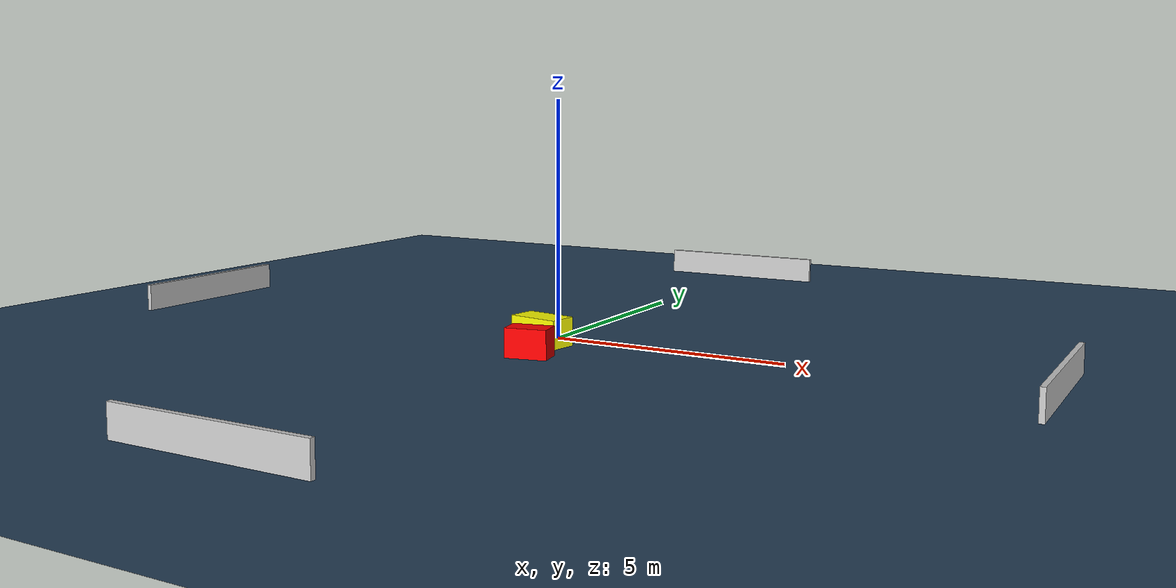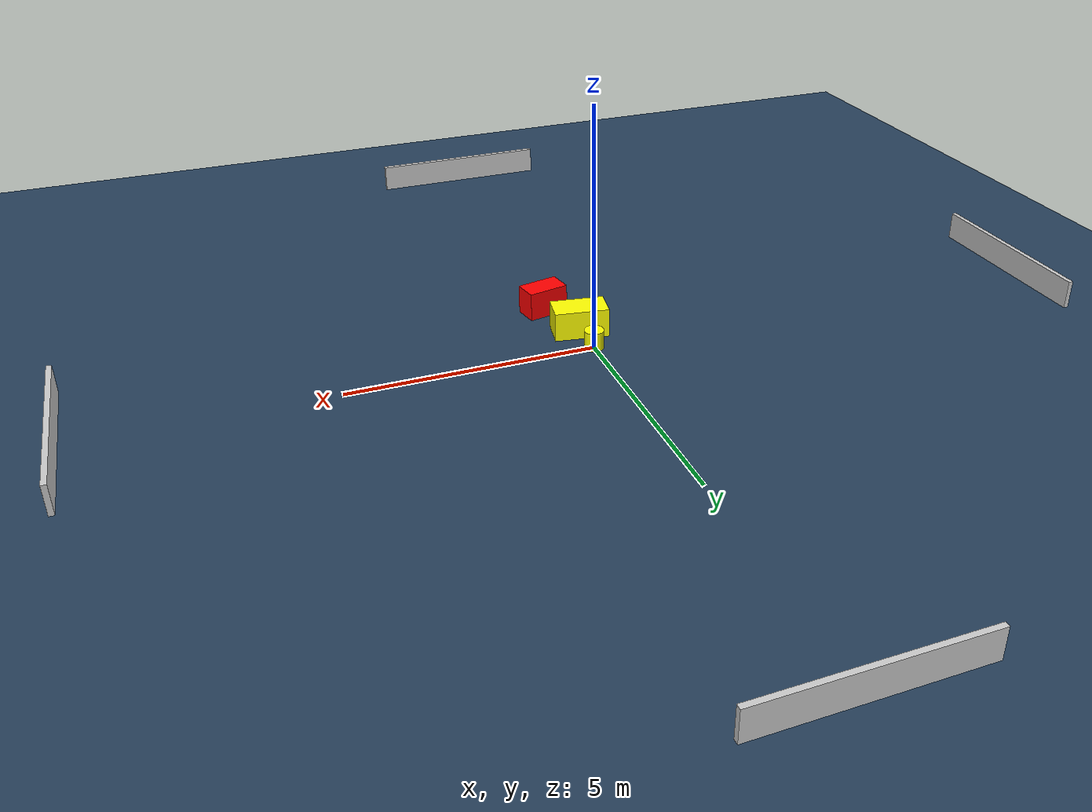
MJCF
<?xml version="1.0" ?>
<mujoco model="generated_environment">
  <option timestep="0.01" integrator="RK4" cone="elliptic"/>
  <default>
    <geom density="1"/>
  </default>
  <asset>
    <texture builtin="gradient" height="3072" name="skybox" rgb1="0.3 0.5 0.7" rgb2="0 0 0" type="skybox" width="512"/>
    <texture builtin="checker" height="300" name="groundplane" rgb1="0.2 0.3 0.4" rgb2="0.1 0.2 0.3" type="2d" width="300"/>
    <material name="groundplane" reflectance="0.2" texrepeat="5 5" texture="groundplane"/>
  </asset>
  <worldbody>
    <light dir="0 0 -1" directional="true" pos="0 0 1.5"/>
    <geom condim="3" friction="0.5 0.005 0.001" material="groundplane" name="floor" pos="0 0 0" size="0 0 0.05" type="plane"/>
    <body name="walls">
      <geom name="wall_1" condim="4" pos="-10.0 0.0 0.3" rgba="0.800000011920929 0.800000011920929 0.800000011920929 1.0" size="0.05 2.0 0.3" type="box"/>
      <geom name="wall_2" condim="4" pos="10.0 0.0 0.3" rgba="0.800000011920929 0.800000011920929 0.800000011920929 1.0" size="0.05 2.0 0.3" type="box"/>
      <geom name="wall_3" condim="4" pos="0.0 -10.0 0.3" rgba="0.800000011920929 0.800000011920929 0.800000011920929 1.0" size="2.0 0.05 0.3" type="box"/>
      <geom name="wall_4" condim="4" pos="0.0 10.0 0.3" rgba="0.800000011920929 0.800000011920929 0.800000011920929 1.0" size="2.0 0.05 0.3" type="box"/>
    </body>
    <body name="robot">
      <joint name="joint_x" type="slide" pos="0 0 0" axis="1 0 0"/>
      <joint name="joint_y" type="slide" pos="0 0 0" axis="0 1 0"/>
      <geom name="robot" type="cylinder" pos="0.0 0.0 0.2" size="0.2 0.2 0.0" mass="5.0" friction="1.0 0.005 0.0001" condim="4" rgba="1.0 1.0 0.0 1.0"/>
    </body>
    <body name="obstacle_1_movable">
      <geom name="obstacle_1_movable" condim="4" pos="0.03867519627801406 -0.7271850605333705 0.3" euler="0 0 171.03101219780729" friction="0.0 0.005 0.001" rgba="1.0 1.0 0.0 1.0" size="0.553181065155713 0.30622870316825657 0.3" type="box" mass="0.1"/>
      <joint type="free"/>
    </body>
    <body name="obstacle_2_static">
      <geom name="obstacle_2_static" condim="4" pos="0.43077392318455454 -1.8588458173879885 0.3" euler="0 0 101.6246013107574" friction="0.0 0.005 0.001" rgba="1.0 0.0 0.0 1.0" size="0.25162255699329905 0.4305942648419946 0.3" type="box"/>
    </body>
  </worldbody>
  <actuator>
    <motor name="actuator_x" joint="joint_x" gear="1" ctrlrange="-1 1"/>
    <motor name="actuator_y" joint="joint_y" gear="1" ctrlrange="-1 1"/>
  </actuator>
</mujoco>
